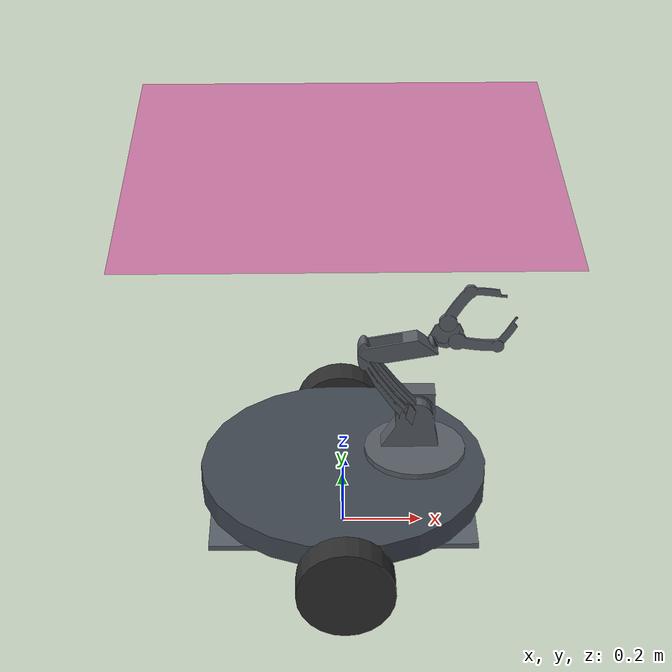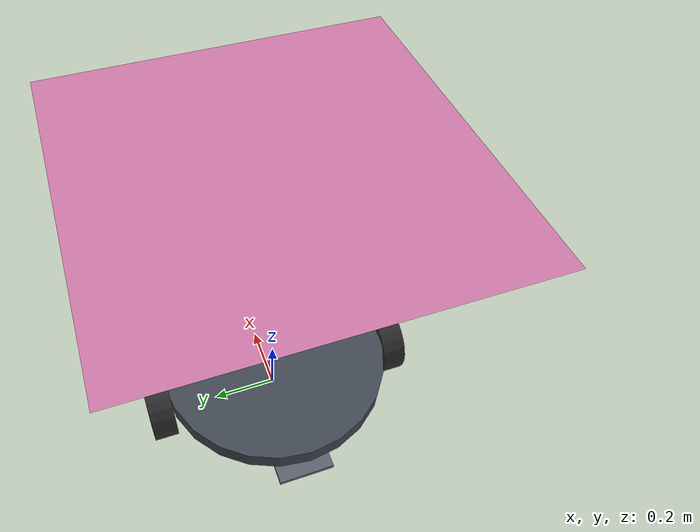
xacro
<?xml version="1.0"?>
<robot xmlns:xacro="http://www.ros.org/wiki/xacro" name="system">
<xacro:include filename="$(find cv_robot)/urdf/cv_robot.urdf.xacro"/>
<xacro:include filename="$(find cv_robot)/urdf/robot_arm_f.urdf.xacro"/>

<xacro:arm parent="base_link" xyz="0.18 0 0" rpy="0 0 -1.57"/>

</robot>

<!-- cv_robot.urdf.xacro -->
<robot name="cv_robot">
  <link name="base_footprint"/>
  <joint name="base_joint" type="fixed">
    <parent link="base_footprint"/>
    <child link="base_link"/>
    <origin xyz="0 0 0.15" rpy="0 0 0"/>
  </joint>

  <material name="chassis">     <color rgba="0.25 0.28 0.32 1"/></material>
  <material name="dark_rubber"> <color rgba="0.18 0.18 0.18 1"/></material>
  <material name="top_cap">     <color rgba="0.35 0.38 0.42 1"/></material>

  <!-- Main chassis (cylinder) -->
  <link name="base_link">
    <visual>
      <geometry>
        <cylinder radius="0.36" length="0.06"/>
      </geometry>
      <material name="chassis"/>
    </visual>
    <collision>
      <geometry>
        <cylinder radius="0.36" length="0.06"/>
      </geometry>
    </collision>
    <inertial>
      <mass value="10.8"/>
      <inertia ixx="0.486" ixy="0" ixz="0" iyy="0.486" iyz="0" izz="0.729"/>
    </inertial>
  </link>

  <!-- Left wheel -->
  <link name="left_wheel">
    <visual>
      <origin xyz="0 0 0" rpy="1.5708 0 0"/>
      <geometry><cylinder radius="0.12" length="0.075"/></geometry>
      <material name="dark_rubber"/>
    </visual>
    <collision>
      <origin xyz="0 0 0" rpy="1.5708 0 0"/>
      <geometry><cylinder radius="0.12" length="0.075"/></geometry>
    </collision>
    <inertial>
      <mass value="0.72"/>
      <inertia ixx="0.0045" ixy="0" ixz="0" iyy="0.0045" iyz="0" izz="0.0045"/>
    </inertial>
  </link>
  <joint name="left_wheel_joint" type="continuous">
    <parent link="base_link"/>
    <child link="left_wheel"/>
    <origin xyz="0 0.39 -0.06" rpy="0 0 0"/>
    <axis xyz="0 1 0"/>
  </joint>

  <!-- Right wheel -->
  <link name="right_wheel">
    <visual>
      <origin xyz="0 0 0" rpy="1.5708 0 0"/>
      <geometry><cylinder radius="0.12" length="0.075"/></geometry>
      <material name="dark_rubber"/>
    </visual>
    <collision>
      <origin xyz="0 0 0" rpy="1.5708 0 0"/>
      <geometry><cylinder radius="0.12" length="0.075"/></geometry>
    </collision>
    <inertial>
      <mass value="0.72"/>
      <inertia ixx="0.0045" ixy="0" ixz="0" iyy="0.0045" iyz="0" izz="0.0045"/>
    </inertial>
  </link>
  <joint name="right_wheel_joint" type="continuous">
    <parent link="base_link"/>
    <child link="right_wheel"/>
    <origin xyz="0 -0.39 -0.06" rpy="0 0 0"/>
    <axis xyz="0 1 0"/>
  </joint>

  <!-- Skid plate rear (fore/aft stability support) -->
  <link name="skid_plate">
    <visual>
      <geometry><box size="0.15 0.18 0.015"/></geometry>
      <material name="top_cap"/>
    </visual>
    <collision>
      <geometry><box size="0.15 0.18 0.015"/></geometry>
    </collision>
    <inertial>
      <mass value="0.18"/>
      <inertia ixx="0.00003" ixy="0" ixz="0" iyy="0.00003" iyz="0" izz="0.00003"/>
    </inertial>
  </link>
  <joint name="skid_joint" type="fixed">
    <parent link="base_link"/>
    <child link="skid_plate"/>
    <origin xyz="-0.27 0 -0.1725" rpy="0 0 0"/>
  </joint>

  <!-- Skid plate front (fore/aft stability support) -->
  <link name="skid_plate_front">
    <visual>
      <geometry><box size="0.15 0.18 0.015"/></geometry>
      <material name="top_cap"/>
    </visual>
    <collision>
      <geometry><box size="0.15 0.18 0.015"/></geometry>
    </collision>
    <inertial>
      <mass value="0.18"/>
      <inertia ixx="0.00003" ixy="0" ixz="0" iyy="0.00003" iyz="0" izz="0.00003"/>
    </inertial>
  </link>
  <joint name="skid_joint_front" type="fixed">
    <parent link="base_link"/>
    <child link="skid_plate_front"/>
    <origin xyz="0.27 0 -0.1725" rpy="0 0 0"/>
  </joint>

  <!-- Friction tuning -->
  <gazebo reference="skid_plate">
    <mu1>0.1</mu1><mu2>0.1</mu2>
  </gazebo>
  <gazebo reference="skid_plate_front">
    <mu1>0.1</mu1><mu2>0.1</mu2>
  </gazebo>
  <gazebo reference="left_wheel">
    <mu1>1.0</mu1><mu2>1.0</mu2>
  </gazebo>
  <gazebo reference="right_wheel">
    <mu1>1.0</mu1><mu2>1.0</mu2>
  </gazebo>

  <!-- Pose publisher -->
  <gazebo>
    <plugin filename="gz-sim-pose-publisher-system"
            name="gz::sim::systems::PosePublisher">
      <publish_model_pose>true</publish_model_pose>
      <publish_link_pose>false</publish_link_pose>
      <update_frequency>30</update_frequency>
    </plugin>
  </gazebo>

  <!-- Differential drive -->
  <gazebo>
    <plugin filename="gz-sim-diff-drive-system"
            name="gz::sim::systems::DiffDrive">
      <left_joint>left_wheel_joint</left_joint>
      <right_joint>right_wheel_joint</right_joint>
      <wheel_separation>0.78</wheel_separation>
      <wheel_diameter>0.24</wheel_diameter>
      <max_linear_acceleration>1.0</max_linear_acceleration>
      <max_angular_acceleration>2.0</max_angular_acceleration>
      <max_linear_velocity>1.0</max_linear_velocity>
      <max_angular_velocity>2.0</max_angular_velocity>
      <topic>cmd_vel</topic>
      <odom_topic>odom</odom_topic>
      <tf_topic>tf</tf_topic>
      <frame_id>odom</frame_id>
      <child_frame_id>base_link</child_frame_id>
      <odom_publisher_frequency>30</odom_publisher_frequency>
    </plugin>
  </gazebo>

  <!-- ArUco marker (overhead-camera localization ground truth) -->
  <link name="aruco_marker_link">
    <visual>
      <geometry>
        <mesh filename="package://cv_robot/materials/meshes/aruco_marker.obj" scale="1 1 1"/>
      </geometry>
    </visual>
    <collision>
      <geometry>
        <box size="0.05 0.05 0.001"/>
      </geometry>
    </collision>
    <inertial>
      <mass value="0.001"/>
      <inertia ixx="2.1e-7" ixy="0" ixz="0" iyy="2.1e-7" iyz="0" izz="4.1e-7"/>
    </inertial>
  </link>
  <joint name="aruco_marker_joint" type="fixed">
    <parent link="base_link"/>
    <child link="aruco_marker_link"/>
    <origin xyz="0.0 0.0 0.85" rpy="0 0 0"/>
  </joint>

</robot>

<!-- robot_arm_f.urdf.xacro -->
<robot xmlns:xacro="http://www.ros.org/wiki/xacro">
<xacro:macro name="arm" params="parent xyz rpy">

<material name="arm_gray">
    <color rgba="0.35 0.37 0.4 1"/>
</material>

<joint name="arm_mount_joint" type="fixed">
  <parent link="${parent}"/>
  <child link="base"/>
  <origin xyz="${xyz}" rpy="${rpy}"/>
</joint>

<link name="base">
  <visual><origin xyz="0 0 0" rpy="0 0 0"/><geometry><mesh filename="package://cv_robot/materials/meshes/arm1/base.stl" scale="1 1 1"/></geometry><material name="arm_gray"/></visual>
  <collision><origin xyz="0 0 0" rpy="0 0 0"/><geometry><mesh filename="package://cv_robot/materials/meshes/arm1/base.stl" scale="1 1 1"/></geometry></collision>
  <inertial><mass value="1.5"/><inertia ixx="0.00600" ixy="0" ixz="0" iyy="0.00600" iyz="0" izz="0.00900"/></inertial>
</link>

<link name="link1_dummy">
  <inertial><mass value="0.05"/><inertia ixx="0.00001" ixy="0" ixz="0" iyy="0.00001" iyz="0" izz="0.00001"/></inertial>
</link>

<link name="link1">
  <visual><origin xyz="0 0 0" rpy="0 0 0"/><geometry><mesh filename="package://cv_robot/materials/meshes/arm1/link1.stl" scale="1 1 1"/></geometry><material name="arm_gray"/></visual>
  <collision><origin xyz="0 0 0" rpy="0 0 0"/><geometry><mesh filename="package://cv_robot/materials/meshes/arm1/link1.stl" scale="1 1 1"/></geometry></collision>
  <inertial><mass value="1.0"/><inertia ixx="0.00300" ixy="0" ixz="0" iyy="0.00300" iyz="0" izz="0.00150"/></inertial>
</link>

<link name="link2">
  <visual><origin xyz="0 0 0" rpy="0 0 0"/><geometry><mesh filename="package://cv_robot/materials/meshes/arm1/link2.stl" scale="1 1 1"/></geometry><material name="arm_gray"/></visual>
  <collision><origin xyz="0 0 0" rpy="0 0 0"/><geometry><mesh filename="package://cv_robot/materials/meshes/arm1/link2.stl" scale="1 1 1"/></geometry></collision>
  <inertial><mass value="0.6"/><inertia ixx="0.00120" ixy="0" ixz="0" iyy="0.00120" iyz="0" izz="0.00060"/></inertial>
</link>

<link name="link3">
  <visual><origin xyz="0 0 0" rpy="0 0 0"/><geometry><mesh filename="package://cv_robot/materials/meshes/arm1/link3.stl" scale="1 1 1"/></geometry><material name="arm_gray"/></visual>
  <collision><origin xyz="0 0 0" rpy="0 0 0"/><geometry><mesh filename="package://cv_robot/materials/meshes/arm1/link3.stl" scale="1 1 1"/></geometry></collision>
  <inertial><mass value="0.3"/><inertia ixx="0.00040" ixy="0" ixz="0" iyy="0.00040" iyz="0" izz="0.00025"/></inertial>
</link>

<link name="finger_a">
  <visual><origin xyz="0 0 0" rpy="0 0 0"/><geometry><mesh filename="package://cv_robot/materials/meshes/arm1/finger_a.stl" scale="1 1 1"/></geometry><material name="arm_gray"/></visual>
  <collision><origin xyz="0 0 0" rpy="0 0 0"/><geometry><mesh filename="package://cv_robot/materials/meshes/arm1/finger_a.stl" scale="1 1 1"/></geometry></collision>
  <inertial><mass value="0.08"/><inertia ixx="0.00003" ixy="0" ixz="0" iyy="0.00003" iyz="0" izz="0.00002"/></inertial>
</link>

<link name="finger_b">
  <visual><origin xyz="0 0 0" rpy="0 0 0"/><geometry><mesh filename="package://cv_robot/materials/meshes/arm1/finger_b.stl" scale="1 1 1"/></geometry><material name="arm_gray"/></visual>
  <collision><origin xyz="0 0 0" rpy="0 0 0"/><geometry><mesh filename="package://cv_robot/materials/meshes/arm1/finger_b.stl" scale="1 1 1"/></geometry></collision>
  <inertial><mass value="0.08"/><inertia ixx="0.00003" ixy="0" ixz="0" iyy="0.00003" iyz="0" izz="0.00002"/></inertial>
</link>

<joint name="base_to_dummy" type="revolute">
  <parent link="base"/><child link="link1_dummy"/>
  <origin xyz="0.006634 0 0.184151" rpy="0 0 0"/>
  <axis xyz="0 0 1"/>
  <limit lower="-3.14" upper="3.14" effort="10" velocity="1.0"/>
</joint>

<joint name="dummy_to_link1" type="revolute">
  <parent link="link1_dummy"/><child link="link1"/>
  <origin xyz="0 0 0" rpy="0 0 0"/>
  <axis xyz="1 0 0"/>
  <limit lower="-1.57" upper="1.57" effort="10" velocity="1.0"/>
</joint>

<joint name="link1_to_link2" type="revolute">
  <parent link="link1"/><child link="link2"/>
  <origin xyz="0.017930 -0.130747 0.183429" rpy="0 0 0"/>
  <axis xyz="1 0 0"/>
  <limit lower="-1.57" upper="1.57" effort="10" velocity="1.0"/>
</joint>

<joint name="link2_to_link3" type="revolute">
  <parent link="link2"/><child link="link3"/>
  <origin xyz="-0.000077 0.164135 0.031558" rpy="0 0 0"/>
  <axis xyz="1 0 0"/>
  <limit lower="-2.00" upper="1.57" effort="10" velocity="1.0"/>
</joint>

<joint name="link3_to_finger_b" type="revolute">
  <parent link="link3"/><child link="finger_b"/>
  <origin xyz="0.000886 0.062239 0.001315" rpy="0 0 0"/>
  <axis xyz="1 0 0"/>
  <limit lower="0.0" upper="0.8" effort="10" velocity="1.0"/>
</joint>

<joint name="link3_to_finger_a" type="revolute">
  <parent link="link3"/><child link="finger_a"/>
  <origin xyz="-0.002362 0.038938 0.050349" rpy="0 0 0"/>
  <axis xyz="1 0 0"/>
  <limit lower="-0.8" upper="0.0" effort="10" velocity="1.0"/>
</joint>

<ros2_control name="ArmSystem" type="system"> <!-- we can also put this in a sep file and then xacro-->
  <hardware>
    <plugin>gz_ros2_control/GazeboSimSystem</plugin>
  </hardware>

  <!-- Arm joints -->
  <joint name="base_to_dummy">
    <command_interface name="position">
      <param name="min">-3.14</param>
      <param name="max">3.14</param>
    </command_interface>
    <state_interface name="position"/>
    <state_interface name="velocity"/>
  </joint>

  <joint name="dummy_to_link1">
    <command_interface name="position">
      <param name="min">-1.57</param>
      <param name="max">1.57</param>
    </command_interface>
    <state_interface name="position"/>
    <state_interface name="velocity"/>
  </joint>

  <joint name="link1_to_link2">
    <command_interface name="position">
      <param name="min">-2.35</param>
      <param name="max">2.35</param>
    </command_interface>
    <state_interface name="position"/>
    <state_interface name="velocity"/>
  </joint>

  <joint name="link2_to_link3">
    <command_interface name="position">
      <param name="min">-2.35</param>
      <param name="max">2.35</param>
    </command_interface>
    <state_interface name="position"/>
    <state_interface name="velocity"/>
  </joint>

  <!-- finger joints -->
  <joint name="link3_to_finger_a">
    <command_interface name="position">
      <param name="min">0.0</param>
      <param name="max">0.04</param>
    </command_interface>
    <state_interface name="position"/>
    <state_interface name="velocity"/>
  </joint>

  <joint name="link3_to_finger_b">
    <command_interface name="position">
      <param name="min">0.0</param>
      <param name="max">0.04</param>
    </command_interface>
    <state_interface name="position"/>
    <state_interface name="velocity"/>
  </joint>

</ros2_control>
<gazebo>
  <plugin filename="gz_ros2_control-system" name="gz_ros2_control::GazeboSimROS2ControlPlugin">
    <parameters>$(find cv_robot)/config/arm_controllers.yaml</parameters>
  </plugin>
</gazebo>

</xacro:macro>
</robot>
